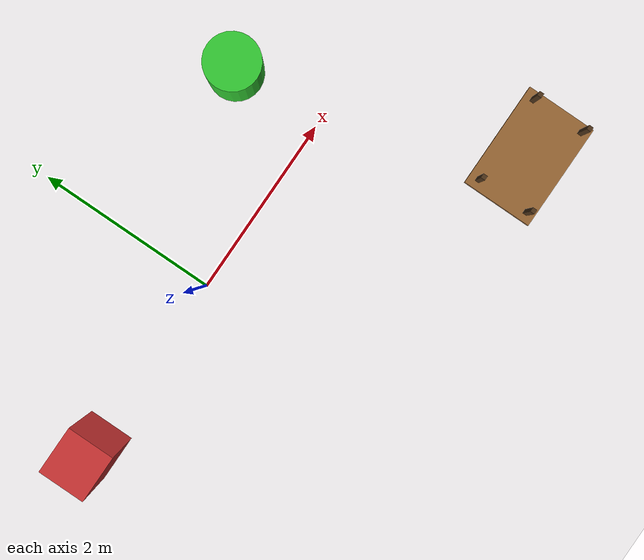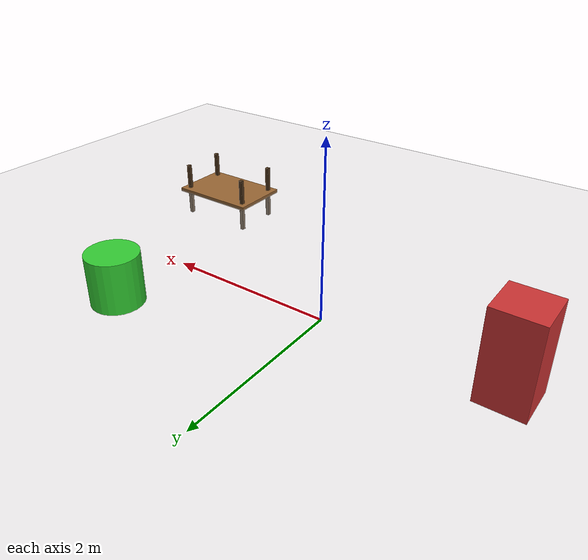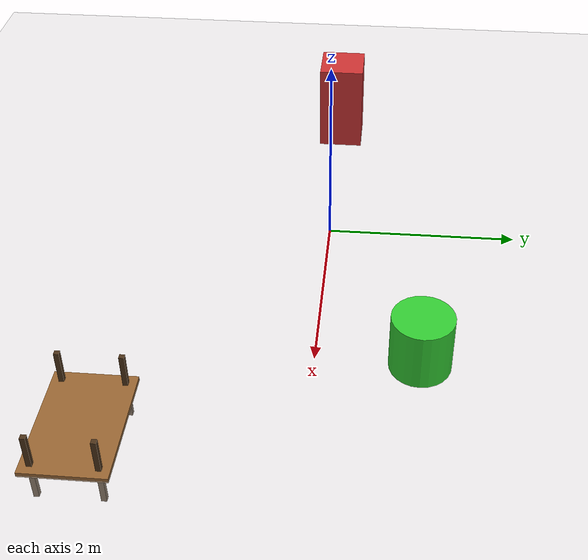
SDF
<?xml version="1.0" ?>
<sdf version="1.7">
  <world name="humanoid_world">
    <!-- Include a ground plane -->
    <include>
      <uri>model://ground_plane</uri>
    </include>

    <!-- Include a sun for lighting -->
    <include>
      <uri>model://sun</uri>
    </include>

    <!-- Physics configuration -->
    <physics name="1ms" type="ode">
      <max_step_size>0.001</max_step_size>
      <real_time_factor>1.0</real_time_factor>
      <real_time_update_rate>1000</real_time_update_rate>
      <gravity>0 0 -9.8</gravity>
    </physics>

    <!-- Ambient and background lighting -->
    <scene>
      <ambient>0.4 0.4 0.4 1</ambient>
      <background>0.7 0.7 0.7 1</background>
      <shadows>true</shadows>
    </scene>

    <!-- Simple obstacles for navigation testing -->
    <model name="obstacle_1">
      <pose>-2 0 0.5 0 0 0</pose>
      <static>true</static>
      <link name="link">
        <collision name="collision">
          <geometry>
            <box>
              <size>0.5 0.5 1.0</size>
            </box>
          </geometry>
        </collision>
        <visual name="visual">
          <geometry>
            <box>
              <size>0.5 0.5 1.0</size>
            </box>
          </geometry>
          <material>
            <ambient>0.8 0.2 0.2 1</ambient>
            <diffuse>0.8 0.2 0.2 1</diffuse>
          </material>
        </visual>
      </link>
    </model>

    <model name="obstacle_2">
      <pose>2 1 0.3 0 0 0</pose>
      <static>true</static>
      <link name="link">
        <collision name="collision">
          <geometry>
            <cylinder>
              <radius>0.3</radius>
              <length>0.6</length>
            </cylinder>
          </geometry>
        </collision>
        <visual name="visual">
          <geometry>
            <cylinder>
              <radius>0.3</radius>
              <length>0.6</length>
            </cylinder>
          </geometry>
          <material>
            <ambient>0.2 0.8 0.2 1</ambient>
            <diffuse>0.2 0.8 0.2 1</diffuse>
          </material>
        </visual>
      </link>
    </model>

    <!-- Simple furniture for humanoid interaction -->
    <model name="table">
      <pose>3 -2 0 0 0 0</pose>
      <static>true</static>
      <link name="table_top">
        <collision name="collision_top">
          <geometry>
            <box>
              <size>1.2 0.8 0.05</size>
            </box>
          </geometry>
        </collision>
        <visual name="visual_top">
          <geometry>
            <box>
              <size>1.2 0.8 0.05</size>
            </box>
          </geometry>
          <material>
            <ambient>0.6 0.4 0.2 1</ambient>
            <diffuse>0.6 0.4 0.2 1</diffuse>
          </material>
        </visual>
      </link>
      <link name="leg1">
        <pose>-0.5 -0.3 0 0 0 0</pose>
        <collision name="collision_leg1">
          <geometry>
            <box>
              <size>0.05 0.05 0.75</size>
            </box>
          </geometry>
        </collision>
        <visual name="visual_leg1">
          <geometry>
            <box>
              <size>0.05 0.05 0.75</size>
            </box>
          </geometry>
          <material>
            <ambient>0.3 0.2 0.1 1</ambient>
            <diffuse>0.3 0.2 0.1 1</diffuse>
          </material>
        </visual>
      </link>
      <link name="leg2">
        <pose>0.5 -0.3 0 0 0 0</pose>
        <collision name="collision_leg2">
          <geometry>
            <box>
              <size>0.05 0.05 0.75</size>
            </box>
          </geometry>
        </collision>
        <visual name="visual_leg2">
          <geometry>
            <box>
              <size>0.05 0.05 0.75</size>
            </box>
          </geometry>
          <material>
            <ambient>0.3 0.2 0.1 1</ambient>
            <diffuse>0.3 0.2 0.1 1</diffuse>
          </material>
        </visual>
      </link>
      <link name="leg3">
        <pose>-0.5 0.3 0 0 0 0</pose>
        <collision name="collision_leg3">
          <geometry>
            <box>
              <size>0.05 0.05 0.75</size>
            </box>
          </geometry>
        </collision>
        <visual name="visual_leg3">
          <geometry>
            <box>
              <size>0.05 0.05 0.75</size>
            </box>
          </geometry>
          <material>
            <ambient>0.3 0.2 0.1 1</ambient>
            <diffuse>0.3 0.2 0.1 1</diffuse>
          </material>
        </visual>
      </link>
      <link name="leg4">
        <pose>0.5 0.3 0 0 0 0</pose>
        <collision name="collision_leg4">
          <geometry>
            <box>
              <size>0.05 0.05 0.75</size>
            </box>
          </geometry>
        </collision>
        <visual name="visual_leg4">
          <geometry>
            <box>
              <size>0.05 0.05 0.75</size>
            </box>
          </geometry>
          <material>
            <ambient>0.3 0.2 0.1 1</ambient>
            <diffuse>0.3 0.2 0.1 1</diffuse>
          </material>
        </visual>
      </link>
      <joint name="top_leg1" type="fixed">
        <parent>table_top</parent>
        <child>leg1</child>
      </joint>
      <joint name="top_leg2" type="fixed">
        <parent>table_top</parent>
        <child>leg2</child>
      </joint>
      <joint name="top_leg3" type="fixed">
        <parent>table_top</parent>
        <child>leg3</child>
      </joint>
      <joint name="top_leg4" type="fixed">
        <parent>table_top</parent>
        <child>leg4</child>
      </joint>
    </model>

    <!-- Humanoid robot will be spawned separately via ROS launch file -->
  </world>
</sdf>
